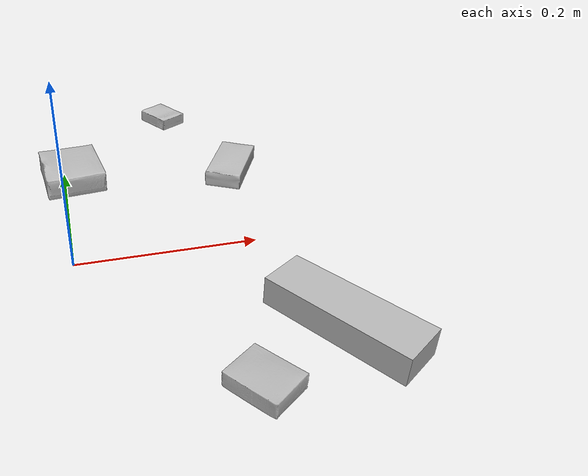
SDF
<sdf version="1.4">
  <world name="default">
    <light name="light1" type="point">
      <pose>0 0 1 0 0 0</pose>
      <diffuse>3 3 3 1</diffuse>
      <specular>3 3 3 1</specular>
    </light>
    <light name="light2" type="point">
      <pose>0 0.5 2 0 0 0</pose>
      <diffuse>1 1 1 1</diffuse>
      <specular>1 1 1 1</specular>
    </light>
    <light name="light3" type="point">
      <pose>0 0.5 2 0 0 0</pose>
      <diffuse>3 3 3 1</diffuse>
      <specular>3 3 3 1</specular>
    </light>
    <scene>
      <ambient>0.7 0.7 0.7</ambient>
    </scene>
    <model name="box1">
      <link name="link_box1">
        <collision name="default">
          <geometry>
            <mesh>
              <uri>model://sugar_box/collision_meshes/collision.obj</uri>
              <scale>0.5 0.5 0.5</scale>
            </mesh>
          </geometry>
          <surface>
            <friction>
              <ode>
                <mu>0.5</mu>
                <mu2>0.5</mu2>
              </ode>
            </friction>
          <contact>
        <ode>
            <max_vel>0</max_vel>
            <min_depth>0.0001</min_depth>
            <kp>1e8</kp>
        </ode>
    </contact></surface>
        </collision>
        <visual name="default">
          <geometry>
            <mesh>
              <uri>model://sugar_box/visual_meshes/visual.dae</uri>
              <scale>0.5 0.5 0.5</scale>
            </mesh>
          </geometry>
        </visual>
        <inertial>
          <mass>0.050072960555553436</mass>
          <pose>0.0005171863595023751 1.924554817378521e-05 -0.00018182402709499002 -0.0004046260967901466 0.0010506635218491861 0.0026153785561980193</pose>
          <inertia>
            <ixx>1.0430162e-05</ixx>
            <iyy>3.371243e-05</iyy>
            <izz>4.0357794e-05</izz>
            <ixy>0</ixy>
            <ixz>0</ixz>
            <iyz>0</iyz>
          </inertia>
        </inertial>
      </link>
      <pose>0.21546311676502228 0.15932093560695648 0.011399301700294018 0.0007753880539127919 -0.023433231011978004 1.051672145745469</pose>
    </model>
    <model name="box2">
      <link name="link_box2">
        <collision name="default">
          <geometry>
            <mesh>
              <uri>model://pudding_box/collision_meshes/collision.obj</uri>
              <scale>0.5 0.5 0.5</scale>
            </mesh>
          </geometry>
          <surface>
            <friction>
              <ode>
                <mu>0.5</mu>
                <mu2>0.5</mu2>
              </ode>
            </friction>
          <contact>
        <ode>
            <max_vel>0</max_vel>
            <min_depth>0.0001</min_depth>
            <kp>1e8</kp>
        </ode>
    </contact></surface>
        </collision>
        <visual name="default">
          <geometry>
            <mesh>
              <uri>model://pudding_box/visual_meshes/visual.dae</uri>
              <scale>0.5 0.5 0.5</scale>
            </mesh>
          </geometry>
        </visual>
        <inertial>
          <mass>0.026034390553832054</mass>
          <pose>0.00024474109522998333 0.00040339428232982755 -0.0002594413817860186 0.005213101355963405 -0.006603798228586091 0.020079817710543634</pose>
          <inertia>
            <ixx>7.3576343e-06</ixx>
            <iyy>4.9502682e-06</iyy>
            <izz>1.086547e-05</izz>
            <ixy>0</ixy>
            <ixz>0</ixz>
            <iyz>0</iyz>
          </inertia>
        </inertial>
      </link>
      <pose>0.14128124713897705 -0.2027120292186737 0.009862902574241161 0.022348269732168257 -0.011391858243516668 -2.531400535527264</pose>
    </model>
    <model name="box3">
      <link name="link_box3">
        <collision name="default">
          <geometry>
            <mesh>
              <uri>model://jenga/collision_meshes/collision.obj</uri>
              <scale>1.0 1.0 1.0</scale>
            </mesh>
          </geometry>
          <surface>
            <friction>
              <ode>
                <mu>0.5</mu>
                <mu2>0.5</mu2>
              </ode>
            </friction>
          <contact>
        <ode>
            <max_vel>0</max_vel>
            <min_depth>0.0001</min_depth>
            <kp>1e8</kp>
        </ode>
    </contact></surface>
        </collision>
        <visual name="default">
          <geometry>
            <mesh>
              <uri>model://jenga/visual_meshes/visual.dae</uri>
              <scale>1.0 1.0 1.0</scale>
            </mesh>
          </geometry>
        </visual>
        <inertial>
          <mass>0.2076648771762848</mass>
          <pose>-2.502856091268768e-07 -0.00010250010382151231 -4.0923405322246253e-05 0.0 -7.34215461761844e-07 0.0</pose>
          <inertia>
            <ixx>5.746591e-05</ixx>
            <iyy>0.00038938745</iyy>
            <izz>0.0004157042</izz>
            <ixy>0</ixy>
            <ixz>0</ixz>
            <iyz>0</iyz>
          </inertia>
        </inertial>
      </link>
      <pose>0.23560139536857605 -0.15148712694644928 0.014999998733401299 1.7364111006623458e-08 -1.5969459875788457e-09 2.1369703098040675</pose>
    </model>
    <model name="box4">
      <link name="link_box4">
        <collision name="default">
          <geometry>
            <mesh>
              <uri>model://gelatin_box/collision_meshes/collision.obj</uri>
              <scale>1.0 1.0 1.0</scale>
            </mesh>
          </geometry>
          <surface>
            <friction>
              <ode>
                <mu>0.5</mu>
                <mu2>0.5</mu2>
              </ode>
            </friction>
          <contact>
        <ode>
            <max_vel>0</max_vel>
            <min_depth>0.0001</min_depth>
            <kp>1e8</kp>
        </ode>
    </contact></surface>
        </collision>
        <visual name="default">
          <geometry>
            <mesh>
              <uri>model://gelatin_box/visual_meshes/visual.dae</uri>
              <scale>1.0 1.0 1.0</scale>
            </mesh>
          </geometry>
        </visual>
        <inertial>
          <mass>0.09577830880880356</mass>
          <pose>0.000431961816502735 0.00011156871187267825 -0.0003640321083366871 -0.0010503719862657887 -0.004755821487046037 0.01644055388468454</pose>
          <inertia>
            <ixx>6.761167e-05</ixx>
            <iyy>4.8294667e-05</iyy>
            <izz>0.00010292002</izz>
            <ixy>0</ixy>
            <ixz>0</ixz>
            <iyz>0</iyz>
          </inertia>
        </inertial>
      </link>
      <pose>0.010540102608501911 0.18354389071464539 0.015168310143053532 0.005596317170391507 -0.007303309302668373 -3.0410086643958474</pose>
    </model>
    <model name="box5">
      <link name="link_box5">
        <collision name="default">
          <geometry>
            <mesh>
              <uri>model://cracker_box/collision_meshes/collision.obj</uri>
              <scale>0.25 0.25 0.25</scale>
            </mesh>
          </geometry>
          <surface>
            <friction>
              <ode>
                <mu>0.5</mu>
                <mu2>0.5</mu2>
              </ode>
            </friction>
          <contact>
        <ode>
            <max_vel>0</max_vel>
            <min_depth>0.0001</min_depth>
            <kp>1e8</kp>
        </ode>
    </contact></surface>
        </collision>
        <visual name="default">
          <geometry>
            <mesh>
              <uri>model://cracker_box/visual_meshes/visual.dae</uri>
              <scale>0.25 0.25 0.25</scale>
            </mesh>
          </geometry>
        </visual>
        <inertial>
          <mass>0.019404999911785126</mass>
          <pose>0.00023660343140363693 6.358561950037256e-05 -0.00042573839891701937 -0.00031620745436260704 -0.011106489600575076 0.0025467952338677235</pose>
          <inertia>
            <ixx>3.084854e-06</ixx>
            <iyy>5.093699e-06</iyy>
            <izz>7.269177e-06</izz>
            <ixy>0</ixy>
            <ixz>0</ixz>
            <iyz>0</iyz>
          </inertia>
        </inertial>
      </link>
      <pose>0.15761074423789978 0.3415670394897461 0.009120451286435127 -0.011788260334841533 -0.00736732327195897 2.1084623770560724</pose>
    </model>
  <physics type="ode">
      <max_contacts>50</max_contacts>
      <ode>
        <solver>
          <type>quick</type>
          <iters>75</iters>
        </solver>
        <constraints>
          <contact_max_correcting_vel>0</contact_max_correcting_vel>
          <contact_surface_layer>0</contact_surface_layer>
        </constraints>
      </ode>
    </physics></world>
</sdf>
